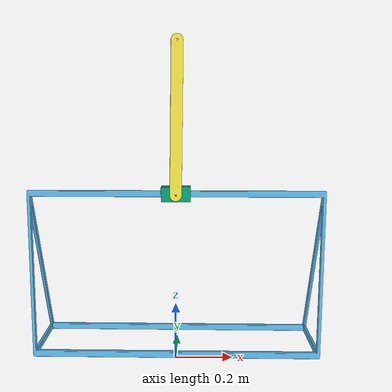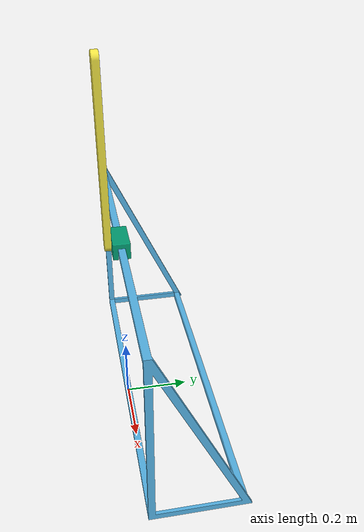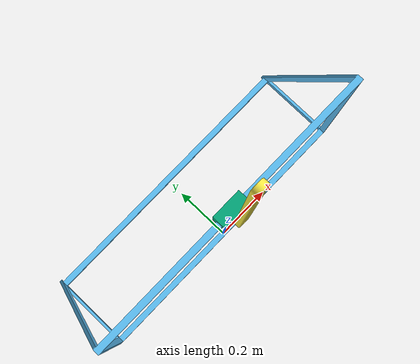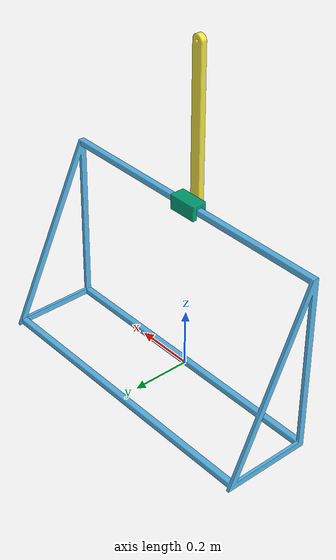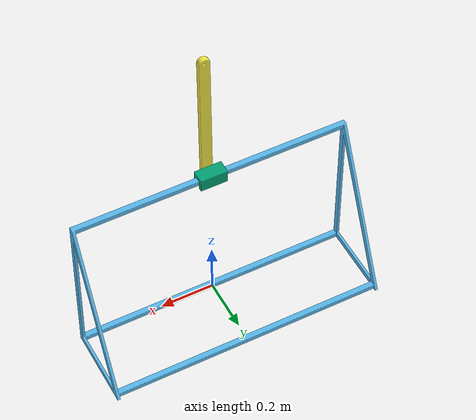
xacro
<?xml version="1.0"?>
<robot xmlns:xacro="http://www.ros.org/wiki/xacro" name="cartpole">
	<!-- Properties -->
	<xacro:property name="obj_scale" value="0.001" />
	<!-- Define colors -->
	<material name="black">
		<color rgba="0.0 0.0 0.0 1.0" />
	</material>
	<material name="orange">
		<color rgba="${255/255} ${108/255} ${10/255} 1.0" />
	</material>
	<!-- Fix to world -->
	<link name="world" />
	<!-- Main beam and base -->
	<xacro:macro name="beam_geometry">
		<origin rpy="0.0 0 0" xyz="0 0 0" />
		<geometry>
			<mesh filename="package://meshes/beam-Body.obj" scale="${obj_scale} ${obj_scale} ${obj_scale}" />
		</geometry>
	</xacro:macro>
	<joint name="world_to_beam" type="fixed">
		<parent link="world" />
		<child link="beam" />
		<origin xyz="0 0 0.590" />
	</joint>
	<link name="beam">
		<visual>
			<xacro:beam_geometry />
		</visual>
		<collision>
			<xacro:beam_geometry />
		</collision>
		<inertial>
			<origin xyz="0 0 -0.58" rpy="0 0 0" />
			<inertia ixx="0.00023937842520000002" ixy="0.0" ixz="-0.0" iyy="0.000508788736" iyz="6.076120000000001e-08" izz="0.0005361586786" />
			<mass value="2.149" />
		</inertial>
	</link>
	<gazebo reference="beam">
		<mu1>
			0.2
		</mu1>
		<mu2>
			0.2
		</mu2>
		<!-- Chrome: http://www.barradeau.com/nicoptere/dump/materials.html -->
		<material>
			<diffuse>
				0.4 0.4 0.4 1
			</diffuse>
			<ambient>
				0.25 0.25 0.25 1
			</ambient>
			<specular>
				0.774597 0.774597 0.774597 1
			</specular>
		</material>
	</gazebo>
	<!-- Cart -->
	<xacro:macro name="cart_geometry">
		<origin rpy="0.0 0 0" xyz="0 0 0" />
		<geometry>
			<mesh filename="package://meshes/cart-Body.obj" scale="${obj_scale} ${obj_scale} ${obj_scale}" />
		</geometry>
	</xacro:macro>
	<joint name="beam_to_cart" type="prismatic">
		<axis xyz="1 0 0" />
		<parent link="beam" />
		<child link="cart" />
		<limit effort="1000.0" lower="-0.450" upper="0.450" velocity="5.0" />
		<origin rpy="0 0 0" xyz="0 0 0" />
		<dynamics damping="0.1" />
	</joint>
		<gazebo>
		<plugin filename="libignition-gazebo-apply-joint-force-system.so" name="ignition::gazebo::systems::ApplyJointForce">
			<joint_name>
				beam_to_cart
			</joint_name>
		</plugin>
	</gazebo>
	<link name="cart">
		<visual>
			<xacro:cart_geometry />
		</visual>
		<collision>
			<xacro:cart_geometry />
		</collision>
		<inertial>
			<origin xyz="0 0 0.00293" rpy="0 0 0" />
			<inertia ixx="0.00023937842520000002" ixy="0.0" ixz="-0.0" iyy="0.000508788736" iyz="6.076120000000001e-08" izz="0.0005361586786" />
			<mass value="0.483" />
		</inertial>
	</link>
	<gazebo reference="cart">
		<mu1>
			0.2
		</mu1>
		<mu2>
			0.2
		</mu2>
		<!-- Chrome: http://www.barradeau.com/nicoptere/dump/materials.html -->
		<material>
			<diffuse>
				0.4 0.4 0.4 1
			</diffuse>
			<ambient>
				0.25 0.25 0.25 1
			</ambient>
			<specular>
				0.774597 0.774597 0.774597 1
			</specular>
		</material>
	</gazebo>
	<!-- Pole -->
	<xacro:macro name="pole_geometry">
		<origin rpy="0.0 0 0" xyz="0 0 0" />
		<geometry>
			<mesh filename="package://meshes/pole-Body.obj" scale="${obj_scale} ${obj_scale} ${obj_scale}" />
		</geometry>
	</xacro:macro>
	<joint name="cart_to_pole" type="continuous">
		<axis xyz="0 1 0" />
		<parent link="cart" />
		<child link="pole" />
		<limit effort="1000.0" velocity="5.0" />
		<origin rpy="0 0.01 0" xyz="0 -0.025 0" />
		<dynamics damping="0.01" />
	</joint>
	<gazebo>
		<plugin filename="libignition-gazebo-apply-joint-force-system.so" name="ignition::gazebo::systems::ApplyJointForce">
			<joint_name>
				cart_to_pole
			</joint_name>
		</plugin>
	</gazebo>
	<link name="pole">
		<visual>
			<xacro:pole_geometry />
		</visual>
		<collision>
			<xacro:pole_geometry />
		</collision>
		<inertial>
			<origin xyz="0 -0.01 0.2532" rpy="0 0 0" />
			<inertia ixx="0.027503933416200003" ixy="-0.0" ixz="0.0" iyy="0.027614703117600004" iyz="-0.0" izz="0.00018578143960000003" />
			<mass value="1.146" />
		</inertial>
	</link>
	<gazebo reference="pole">
		<mu1>
			0.2
		</mu1>
		<mu2>
			0.2
		</mu2>
		<!-- Polished copper: http://www.barradeau.com/nicoptere/dump/materials.html -->
		<material>
			<diffuse>
				1 1 1 1
			</diffuse>
			<ambient>
				1 1 1 1
			</ambient>
			<specular>
				1 1 1 1
			</specular>
		</material>
	</gazebo>
	<!-- Joint states plugin -->
	<gazebo>
		<plugin filename="libignition-gazebo-joint-state-publisher-system.so" name="ignition::gazebo::systems::JointStatePublisher">
			<ros>
				<remapping>~/out:=joint_states</remapping>
			</ros>
	      	<update_rate>30</update_rate>
		  	<joint_name>beam_to_cart</joint_name>
		  	<joint_name>cart_to_pole</joint_name>
		</plugin>
	</gazebo>
</robot>
